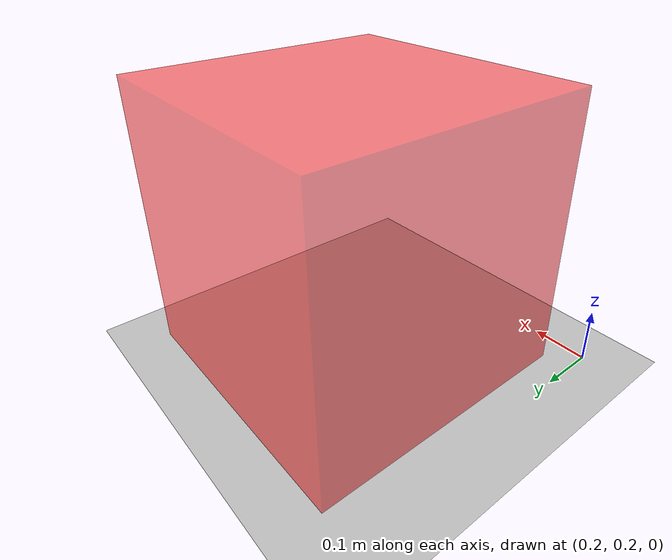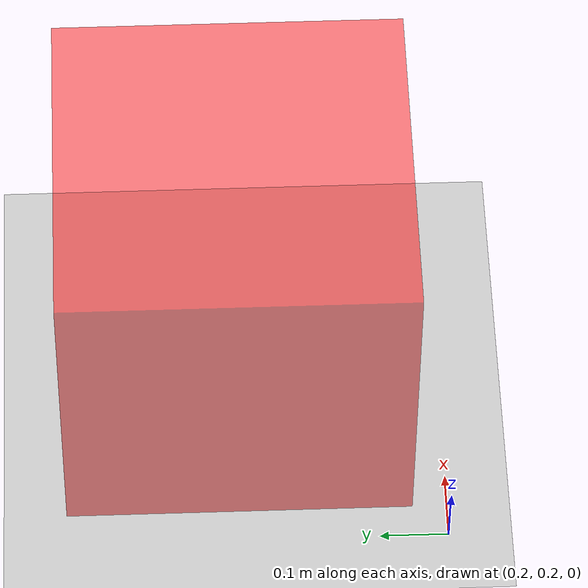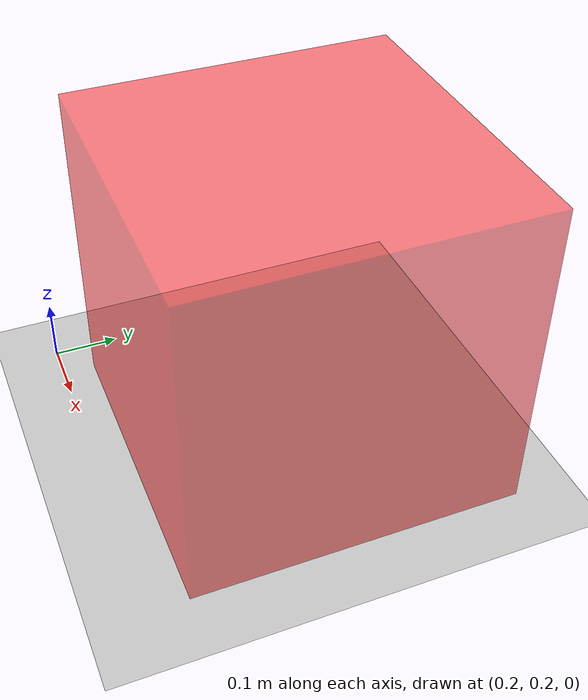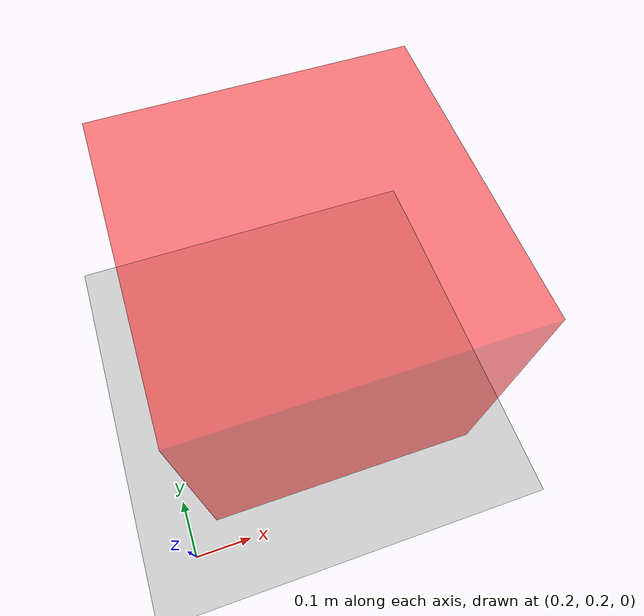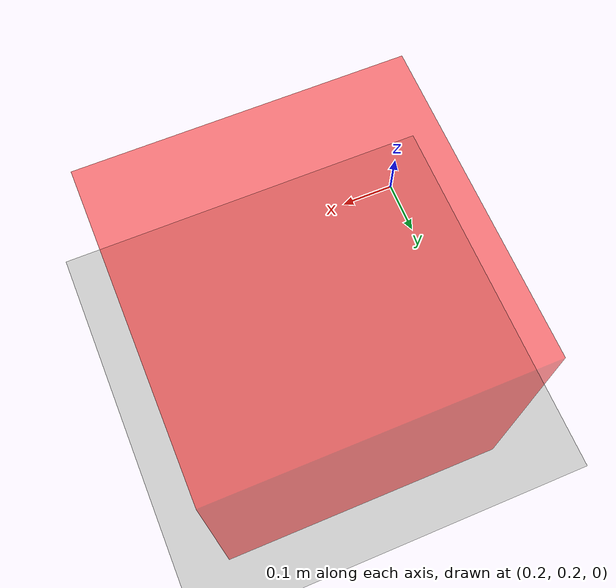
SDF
<?xml version="1.0" ?>
<sdf version="1.6">
  <world name="default">

    <include>
      <uri>model://ground_plane</uri>
    </include>

    <include>
      <uri>model://sun</uri>
    </include>

    <model name='styrofoam'>
      <static>true</static>
      <pose frame=''>0.50 0.50 0.25 0 0 0</pose>
      <link name='link'>
        <inertial>
          <mass>9.375</mass>
          <inertia>
            <ixx>0.390625</ixx>
            <ixy>0</ixy>
            <ixz>0</ixz>
            <iyy>0.390625</iyy>
            <iyz>0</iyz>
            <izz>0.390625</izz>
          </inertia>
          <pose frame=''>0 0 0 0 -0 0</pose>
        </inertial>
        <self_collide>0</self_collide>
        <enable_wind>0</enable_wind>
        <kinematic>0</kinematic>
        <pose frame=''>0 0 0 0 -0 0</pose>
        <gravity>1</gravity>
        <visual name='visual'>
          <geometry>
            <box>
              <size>0.5 0.5 0.5</size>
            </box>
          </geometry>
          <material>
            <script>
              <name>Gazebo/Grey</name>
              <uri>file://media/materials/scripts/gazebo.material</uri>
            </script>
            <shader type='pixel'>
              <normal_map>__default__</normal_map>
            </shader>
            <ambient>1 0 0 0</ambient>
            <diffuse>0.7 0.7 0.7 0</diffuse>
            <specular>0.01 0.01 0.01 1</specular>
            <emissive>0 0 0 1</emissive>
          </material>
          <pose frame=''>0 0 0 0 -0 0</pose>
          <transparency>0.5</transparency>
          <cast_shadows>1</cast_shadows>
        </visual>
        <collision name='collision'>
          <laser_retro>0</laser_retro>
          <max_contacts>10</max_contacts>
          <pose frame=''>0 0 0 0 -0 0</pose>
          <geometry>
            <box>
              <size>0.5 0.5 0.5</size>
            </box>
          </geometry>
          <surface>
            <friction>
              <ode>
                <mu>2</mu>
                <mu2>3</mu2>
                <fdir1>0 0 0</fdir1>
                <slip1>0</slip1>
                <slip2>0</slip2>
              </ode>
              <torsional>
                <coefficient>1</coefficient>
                <patch_radius>0</patch_radius>
                <surface_radius>0</surface_radius>
                <use_patch_radius>1</use_patch_radius>
                <ode>
                  <slip>0</slip>
                </ode>
              </torsional>
            </friction>
            <bounce>
              <restitution_coefficient>0</restitution_coefficient>
              <threshold>1e+06</threshold>
            </bounce>
            <contact>
              <collide_without_contact>0</collide_without_contact>
              <collide_without_contact_bitmask>1</collide_without_contact_bitmask>
              <collide_bitmask>1</collide_bitmask>
              <ode>
                <soft_cfm>0</soft_cfm>
                <soft_erp>0.2</soft_erp>
                <kp>1e+13</kp>
                <kd>1</kd>
                <max_vel>0.01</max_vel>
                <min_depth>0</min_depth>
              </ode>
              <bullet>
                <split_impulse>1</split_impulse>
                <split_impulse_penetration_threshold>-0.01</split_impulse_penetration_threshold>
                <soft_cfm>0</soft_cfm>
                <soft_erp>0.2</soft_erp>
                <kp>1e+13</kp>
                <kd>1</kd>
              </bullet>
            </contact>
          </surface>
        </collision>
      </link>
      <static>0</static>
      <allow_auto_disable>1</allow_auto_disable>
    </model>

    <gravity>0 0 -9.8</gravity>

    <physics type="ode">
      <real_time_update_rate>1000.0</real_time_update_rate>
    </physics>

  </world>
</sdf>
